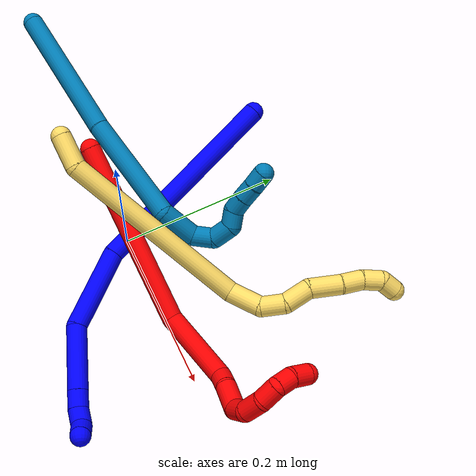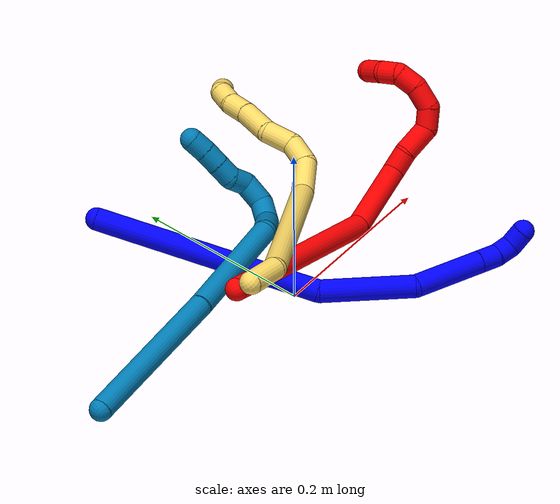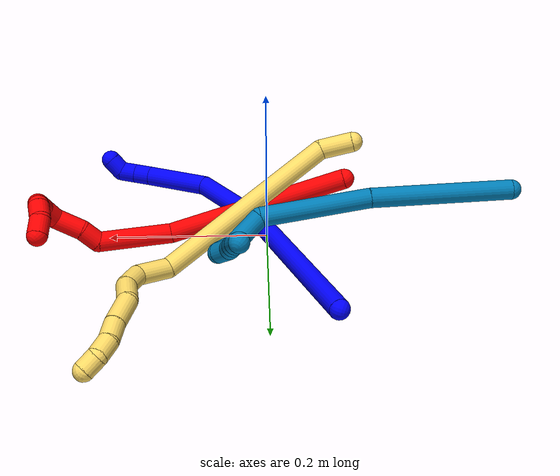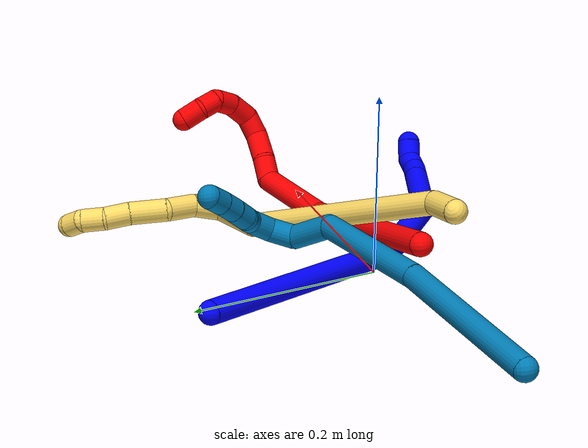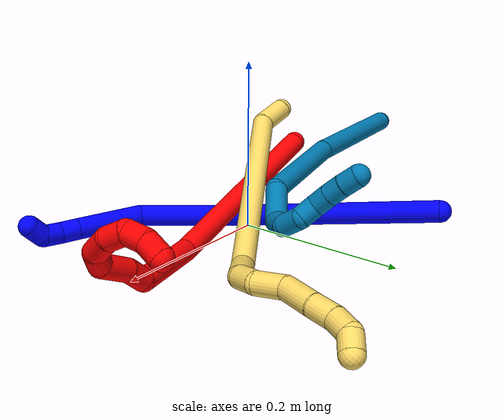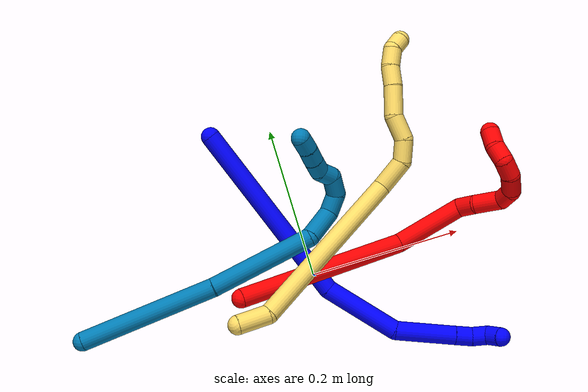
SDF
<sdf version="1.7">
 <world name="default">
  <model name="1">
   <static>0</static>
   <link name="1">
    <collision name="collision-cylinder-e_1_1_4">
     <pose>0.076953 -0.066994 0.075211 0.727679 0.652409 0.256225</pose>
     <geometry><cylinder><radius>0.0125</radius><length>0.25351</length></cylinder></geometry>
     <surface>
      <friction><ode><mu>1.16</mu><mu2>1.16</mu2><slip1>0</slip1><slip2>0</slip2></ode></friction>
      <contact><ode><kp>1e+06</kp><kd>1</kd><max_vel>0</max_vel><min_depth>0.001</min_depth></ode></contact>
     </surface>
    </collision>
    <visual name="visual-cylinder-e_1_1_4">
     <pose>0.076953 -0.066994 0.075211 0.727679 0.652409 0.256225</pose>
     <geometry><cylinder><radius>0.0125</radius><length>0.25351</length></cylinder></geometry>
     <material><ambient>0 0 1 1</ambient></material>
    </visual>
    <collision name="collision-cylinder-e_2_4_5">
     <pose>0.173534 -0.152003 0.194668 0.386645 0.389828 0.077259</pose>
     <geometry><cylinder><radius>0.0125</radius><length>0.103294</length></cylinder></geometry>
     <surface>
      <friction><ode><mu>1.16</mu><mu2>1.16</mu2><slip1>0</slip1><slip2>0</slip2></ode></friction>
      <contact><ode><kp>1e+06</kp><kd>1</kd><max_vel>0</max_vel><min_depth>0.001</min_depth></ode></contact>
     </surface>
    </collision>
    <visual name="visual-cylinder-e_2_4_5">
     <pose>0.173534 -0.152003 0.194668 0.386645 0.389828 0.077259</pose>
     <geometry><cylinder><radius>0.0125</radius><length>0.103294</length></cylinder></geometry>
     <material><ambient>0 0 1 1</ambient></material>
    </visual>
    <collision name="collision-cylinder-e_3_5_6">
     <pose>0.201872 -0.167133 0.277561 -0.074485 0.221108 -0.008272</pose>
     <geometry><cylinder><radius>0.0125</radius><length>0.079442</length></cylinder></geometry>
     <surface>
      <friction><ode><mu>1.16</mu><mu2>1.16</mu2><slip1>0</slip1><slip2>0</slip2></ode></friction>
      <contact><ode><kp>1e+06</kp><kd>1</kd><max_vel>0</max_vel><min_depth>0.001</min_depth></ode></contact>
     </surface>
    </collision>
    <visual name="visual-cylinder-e_3_5_6">
     <pose>0.201872 -0.167133 0.277561 -0.074485 0.221108 -0.008272</pose>
     <geometry><cylinder><radius>0.0125</radius><length>0.079442</length></cylinder></geometry>
     <material><ambient>0 0 1 1</ambient></material>
    </visual>
    <collision name="collision-cylinder-e_4_6_7">
     <pose>0.213014 -0.163363 0.326887 -0.082745 0.223052 -0.009272</pose>
     <geometry><cylinder><radius>0.0125</radius><length>0.021976</length></cylinder></geometry>
     <surface>
      <friction><ode><mu>1.16</mu><mu2>1.16</mu2><slip1>0</slip1><slip2>0</slip2></ode></friction>
      <contact><ode><kp>1e+06</kp><kd>1</kd><max_vel>0</max_vel><min_depth>0.001</min_depth></ode></contact>
     </surface>
    </collision>
    <visual name="visual-cylinder-e_4_6_7">
     <pose>0.213014 -0.163363 0.326887 -0.082745 0.223052 -0.009272</pose>
     <geometry><cylinder><radius>0.0125</radius><length>0.021976</length></cylinder></geometry>
     <material><ambient>0 0 1 1</ambient></material>
    </visual>
    <collision name="collision-cylinder-e_5_7_8">
     <pose>0.215849 -0.160691 0.347771 -0.173312 0.039024 -0.003391</pose>
     <geometry><cylinder><radius>0.0125</radius><length>0.020736</length></cylinder></geometry>
     <surface>
      <friction><ode><mu>1.16</mu><mu2>1.16</mu2><slip1>0</slip1><slip2>0</slip2></ode></friction>
      <contact><ode><kp>1e+06</kp><kd>1</kd><max_vel>0</max_vel><min_depth>0.001</min_depth></ode></contact>
     </surface>
    </collision>
    <visual name="visual-cylinder-e_5_7_8">
     <pose>0.215849 -0.160691 0.347771 -0.173312 0.039024 -0.003391</pose>
     <geometry><cylinder><radius>0.0125</radius><length>0.020736</length></cylinder></geometry>
     <material><ambient>0 0 1 1</ambient></material>
    </visual>
    <collision name="collision-cylinder-e_6_8_2">
     <pose>0.211552 -0.162159 0.366807 0.353047 -0.463353 -0.084115</pose>
     <geometry><cylinder><radius>0.0125</radius><length>0.021042</length></cylinder></geometry>
     <surface>
      <friction><ode><mu>1.16</mu><mu2>1.16</mu2><slip1>0</slip1><slip2>0</slip2></ode></friction>
      <contact><ode><kp>1e+06</kp><kd>1</kd><max_vel>0</max_vel><min_depth>0.001</min_depth></ode></contact>
     </surface>
    </collision>
    <visual name="visual-cylinder-e_6_8_2">
     <pose>0.211552 -0.162159 0.366807 0.353047 -0.463353 -0.084115</pose>
     <geometry><cylinder><radius>0.0125</radius><length>0.021042</length></cylinder></geometry>
     <material><ambient>0 0 1 1</ambient></material>
    </visual>
    <collision name="collision-sphere-2">
     <pose>0.206849 -0.165413 0.375638 0 -0 0</pose>
     <geometry><sphere><radius>0.0125</radius></sphere></geometry>
     <surface>
      <friction><ode><mu>1.16</mu><mu2>1.16</mu2><slip1>0</slip1><slip2>0</slip2></ode></friction>
      <contact><ode><kp>1e+06</kp><kd>1</kd><max_vel>0</max_vel><min_depth>0.001</min_depth></ode></contact>
     </surface>
    </collision>
    <visual name="visual-sphere-2">
     <pose>0.206849 -0.165413 0.375638 0 -0 0</pose>
     <geometry><sphere><radius>0.0125</radius></sphere></geometry>
     <material><ambient>0 0 1 1</ambient></material>
    </visual>
    <collision name="collision-sphere-4">
     <pose>0.153906 -0.133989 0.150423 0 -0 0</pose>
     <geometry><sphere><radius>0.0125</radius></sphere></geometry>
     <surface>
      <friction><ode><mu>1.16</mu><mu2>1.16</mu2><slip1>0</slip1><slip2>0</slip2></ode></friction>
      <contact><ode><kp>1e+06</kp><kd>1</kd><max_vel>0</max_vel><min_depth>0.001</min_depth></ode></contact>
     </surface>
    </collision>
    <visual name="visual-sphere-4">
     <pose>0.153906 -0.133989 0.150423 0 -0 0</pose>
     <geometry><sphere><radius>0.0125</radius></sphere></geometry>
     <material><ambient>0 0 1 1</ambient></material>
    </visual>
    <collision name="collision-sphere-1">
     <geometry><sphere><radius>0.0125</radius></sphere></geometry>
     <surface>
      <friction><ode><mu>1.16</mu><mu2>1.16</mu2><slip1>0</slip1><slip2>0</slip2></ode></friction>
      <contact><ode><kp>1e+06</kp><kd>1</kd><max_vel>0</max_vel><min_depth>0.001</min_depth></ode></contact>
     </surface>
    </collision>
    <visual name="visual-sphere-1">
     <geometry><sphere><radius>0.0125</radius></sphere></geometry>
     <material><ambient>0 0 1 1</ambient></material>
    </visual>
    <collision name="collision-sphere-8">
     <pose>0.216254 -0.158905 0.357975 0 -0 0</pose>
     <geometry><sphere><radius>0.0125</radius></sphere></geometry>
     <surface>
      <friction><ode><mu>1.16</mu><mu2>1.16</mu2><slip1>0</slip1><slip2>0</slip2></ode></friction>
      <contact><ode><kp>1e+06</kp><kd>1</kd><max_vel>0</max_vel><min_depth>0.001</min_depth></ode></contact>
     </surface>
    </collision>
    <visual name="visual-sphere-8">
     <pose>0.216254 -0.158905 0.357975 0 -0 0</pose>
     <geometry><sphere><radius>0.0125</radius></sphere></geometry>
     <material><ambient>0 0 1 1</ambient></material>
    </visual>
    <collision name="collision-sphere-5">
     <pose>0.193161 -0.170017 0.238914 0 -0 0</pose>
     <geometry><sphere><radius>0.0125</radius></sphere></geometry>
     <surface>
      <friction><ode><mu>1.16</mu><mu2>1.16</mu2><slip1>0</slip1><slip2>0</slip2></ode></friction>
      <contact><ode><kp>1e+06</kp><kd>1</kd><max_vel>0</max_vel><min_depth>0.001</min_depth></ode></contact>
     </surface>
    </collision>
    <visual name="visual-sphere-5">
     <pose>0.193161 -0.170017 0.238914 0 -0 0</pose>
     <geometry><sphere><radius>0.0125</radius></sphere></geometry>
     <material><ambient>0 0 1 1</ambient></material>
    </visual>
    <collision name="collision-sphere-6">
     <pose>0.210584 -0.164249 0.316207 0 -0 0</pose>
     <geometry><sphere><radius>0.0125</radius></sphere></geometry>
     <surface>
      <friction><ode><mu>1.16</mu><mu2>1.16</mu2><slip1>0</slip1><slip2>0</slip2></ode></friction>
      <contact><ode><kp>1e+06</kp><kd>1</kd><max_vel>0</max_vel><min_depth>0.001</min_depth></ode></contact>
     </surface>
    </collision>
    <visual name="visual-sphere-6">
     <pose>0.210584 -0.164249 0.316207 0 -0 0</pose>
     <geometry><sphere><radius>0.0125</radius></sphere></geometry>
     <material><ambient>0 0 1 1</ambient></material>
    </visual>
    <collision name="collision-sphere-7">
     <pose>0.215445 -0.162478 0.337566 0 -0 0</pose>
     <geometry><sphere><radius>0.0125</radius></sphere></geometry>
     <surface>
      <friction><ode><mu>1.16</mu><mu2>1.16</mu2><slip1>0</slip1><slip2>0</slip2></ode></friction>
      <contact><ode><kp>1e+06</kp><kd>1</kd><max_vel>0</max_vel><min_depth>0.001</min_depth></ode></contact>
     </surface>
    </collision>
    <visual name="visual-sphere-7">
     <pose>0.215445 -0.162478 0.337566 0 -0 0</pose>
     <geometry><sphere><radius>0.0125</radius></sphere></geometry>
     <material><ambient>0 0 1 1</ambient></material>
    </visual>
    <inertial>
     <pose>0.134158 -0.112593 0.166677 0 -0 0</pose>
     <mass>0.5</mass>
     <inertia>
      <ixx>0.001486</ixx>
      <ixy>0</ixy>
      <ixz>0</ixz>
      <iyy>0.001536</iyy>
      <iyz>0</iyz>
      <izz>-9.4e-05</izz>
     </inertia>
    </inertial>
   </link>
   <pose>-0.07611 0.211367 0.045623 -1.17382 1.01192 -1.56068</pose>
  </model>
  <model name="2">
   <static>0</static>
   <link name="2">
    <collision name="collision-cylinder-e_1_1_4">
     <pose>0.079398 -0.046987 -0.067601 2.53419 0.767291 1.8212</pose>
     <geometry><cylinder><radius>0.0125</radius><length>0.228752</length></cylinder></geometry>
     <surface>
      <friction><ode><mu>1.16</mu><mu2>1.16</mu2><slip1>0</slip1><slip2>0</slip2></ode></friction>
      <contact><ode><kp>1e+06</kp><kd>1</kd><max_vel>0</max_vel><min_depth>0.001</min_depth></ode></contact>
     </surface>
    </collision>
    <visual name="visual-cylinder-e_1_1_4">
     <pose>0.079398 -0.046987 -0.067601 2.53419 0.767291 1.8212</pose>
     <geometry><cylinder><radius>0.0125</radius><length>0.228752</length></cylinder></geometry>
     <material><ambient>1 0 0 1</ambient></material>
    </visual>
    <collision name="collision-cylinder-e_2_4_5">
     <pose>0.191431 -0.095195 -0.167931 3.10433 0.783607 3.05147</pose>
     <geometry><cylinder><radius>0.0125</radius><length>0.092468</length></cylinder></geometry>
     <surface>
      <friction><ode><mu>1.16</mu><mu2>1.16</mu2><slip1>0</slip1><slip2>0</slip2></ode></friction>
      <contact><ode><kp>1e+06</kp><kd>1</kd><max_vel>0</max_vel><min_depth>0.001</min_depth></ode></contact>
     </surface>
    </collision>
    <visual name="visual-cylinder-e_2_4_5">
     <pose>0.191431 -0.095195 -0.167931 3.10433 0.783607 3.05147</pose>
     <geometry><cylinder><radius>0.0125</radius><length>0.092468</length></cylinder></geometry>
     <material><ambient>1 0 0 1</ambient></material>
    </visual>
    <collision name="collision-cylinder-e_3_5_6">
     <pose>0.234693 -0.08995 -0.20332 -1.96134 0.989018 -1.35566</pose>
     <geometry><cylinder><radius>0.0125</radius><length>0.025442</length></cylinder></geometry>
     <surface>
      <friction><ode><mu>1.16</mu><mu2>1.16</mu2><slip1>0</slip1><slip2>0</slip2></ode></friction>
      <contact><ode><kp>1e+06</kp><kd>1</kd><max_vel>0</max_vel><min_depth>0.001</min_depth></ode></contact>
     </surface>
    </collision>
    <visual name="visual-cylinder-e_3_5_6">
     <pose>0.234693 -0.08995 -0.20332 -1.96134 0.989018 -1.35566</pose>
     <geometry><cylinder><radius>0.0125</radius><length>0.025442</length></cylinder></geometry>
     <material><ambient>1 0 0 1</ambient></material>
    </visual>
    <collision name="collision-cylinder-e_4_6_7">
     <pose>0.261578 -0.079057 -0.211367 -2.45329 1.16561 -2.14557</pose>
     <geometry><cylinder><radius>0.0125</radius><length>0.035378</length></cylinder></geometry>
     <surface>
      <friction><ode><mu>1.16</mu><mu2>1.16</mu2><slip1>0</slip1><slip2>0</slip2></ode></friction>
      <contact><ode><kp>1e+06</kp><kd>1</kd><max_vel>0</max_vel><min_depth>0.001</min_depth></ode></contact>
     </surface>
    </collision>
    <visual name="visual-cylinder-e_4_6_7">
     <pose>0.261578 -0.079057 -0.211367 -2.45329 1.16561 -2.14557</pose>
     <geometry><cylinder><radius>0.0125</radius><length>0.035378</length></cylinder></geometry>
     <material><ambient>1 0 0 1</ambient></material>
    </visual>
    <collision name="collision-cylinder-e_5_7_8">
     <pose>0.283726 -0.065082 -0.220939 -1.98417 0.514417 -0.765504</pose>
     <geometry><cylinder><radius>0.0125</radius><length>0.023946</length></cylinder></geometry>
     <surface>
      <friction><ode><mu>1.16</mu><mu2>1.16</mu2><slip1>0</slip1><slip2>0</slip2></ode></friction>
      <contact><ode><kp>1e+06</kp><kd>1</kd><max_vel>0</max_vel><min_depth>0.001</min_depth></ode></contact>
     </surface>
    </collision>
    <visual name="visual-cylinder-e_5_7_8">
     <pose>0.283726 -0.065082 -0.220939 -1.98417 0.514417 -0.765504</pose>
     <geometry><cylinder><radius>0.0125</radius><length>0.023946</length></cylinder></geometry>
     <material><ambient>1 0 0 1</ambient></material>
    </visual>
    <collision name="collision-cylinder-e_6_8_9">
     <pose>0.288033 -0.0441 -0.231753 -2.09594 -0.119243 0.206412</pose>
     <geometry><cylinder><radius>0.0125</radius><length>0.026625</length></cylinder></geometry>
     <surface>
      <friction><ode><mu>1.16</mu><mu2>1.16</mu2><slip1>0</slip1><slip2>0</slip2></ode></friction>
      <contact><ode><kp>1e+06</kp><kd>1</kd><max_vel>0</max_vel><min_depth>0.001</min_depth></ode></contact>
     </surface>
    </collision>
    <visual name="visual-cylinder-e_6_8_9">
     <pose>0.288033 -0.0441 -0.231753 -2.09594 -0.119243 0.206412</pose>
     <geometry><cylinder><radius>0.0125</radius><length>0.026625</length></cylinder></geometry>
     <material><ambient>1 0 0 1</ambient></material>
    </visual>
    <collision name="collision-cylinder-e_7_9_10">
     <pose>0.280923 -0.024314 -0.244627 -2.21319 -0.487305 0.921685</pose>
     <geometry><cylinder><radius>0.0125</radius><length>0.023604</length></cylinder></geometry>
     <surface>
      <friction><ode><mu>1.16</mu><mu2>1.16</mu2><slip1>0</slip1><slip2>0</slip2></ode></friction>
      <contact><ode><kp>1e+06</kp><kd>1</kd><max_vel>0</max_vel><min_depth>0.001</min_depth></ode></contact>
     </surface>
    </collision>
    <visual name="visual-cylinder-e_7_9_10">
     <pose>0.280923 -0.024314 -0.244627 -2.21319 -0.487305 0.921685</pose>
     <geometry><cylinder><radius>0.0125</radius><length>0.023604</length></cylinder></geometry>
     <material><ambient>1 0 0 1</ambient></material>
    </visual>
    <collision name="collision-cylinder-e_8_10_11">
     <pose>0.268152 -0.015262 -0.258447 -3.04916 -0.761187 2.91143</pose>
     <geometry><cylinder><radius>0.0125</radius><length>0.021005</length></cylinder></geometry>
     <surface>
      <friction><ode><mu>1.16</mu><mu2>1.16</mu2><slip1>0</slip1><slip2>0</slip2></ode></friction>
      <contact><ode><kp>1e+06</kp><kd>1</kd><max_vel>0</max_vel><min_depth>0.001</min_depth></ode></contact>
     </surface>
    </collision>
    <visual name="visual-cylinder-e_8_10_11">
     <pose>0.268152 -0.015262 -0.258447 -3.04916 -0.761187 2.91143</pose>
     <geometry><cylinder><radius>0.0125</radius><length>0.021005</length></cylinder></geometry>
     <material><ambient>1 0 0 1</ambient></material>
    </visual>
    <collision name="collision-cylinder-e_9_11_2">
     <pose>0.255418 -0.016833 -0.275735 2.91185 -0.502929 -2.29734</pose>
     <geometry><cylinder><radius>0.0125</radius><length>0.022779</length></cylinder></geometry>
     <surface>
      <friction><ode><mu>1.16</mu><mu2>1.16</mu2><slip1>0</slip1><slip2>0</slip2></ode></friction>
      <contact><ode><kp>1e+06</kp><kd>1</kd><max_vel>0</max_vel><min_depth>0.001</min_depth></ode></contact>
     </surface>
    </collision>
    <visual name="visual-cylinder-e_9_11_2">
     <pose>0.255418 -0.016833 -0.275735 2.91185 -0.502929 -2.29734</pose>
     <geometry><cylinder><radius>0.0125</radius><length>0.022779</length></cylinder></geometry>
     <material><ambient>1 0 0 1</ambient></material>
    </visual>
    <collision name="collision-sphere-2">
     <pose>0.249928 -0.019106 -0.285452 0 -0 0</pose>
     <geometry><sphere><radius>0.0125</radius></sphere></geometry>
     <surface>
      <friction><ode><mu>1.16</mu><mu2>1.16</mu2><slip1>0</slip1><slip2>0</slip2></ode></friction>
      <contact><ode><kp>1e+06</kp><kd>1</kd><max_vel>0</max_vel><min_depth>0.001</min_depth></ode></contact>
     </surface>
    </collision>
    <visual name="visual-sphere-2">
     <pose>0.249928 -0.019106 -0.285452 0 -0 0</pose>
     <geometry><sphere><radius>0.0125</radius></sphere></geometry>
     <material><ambient>1 0 0 1</ambient></material>
    </visual>
    <collision name="collision-sphere-11">
     <pose>0.260908 -0.01456 -0.266018 0 -0 0</pose>
     <geometry><sphere><radius>0.0125</radius></sphere></geometry>
     <surface>
      <friction><ode><mu>1.16</mu><mu2>1.16</mu2><slip1>0</slip1><slip2>0</slip2></ode></friction>
      <contact><ode><kp>1e+06</kp><kd>1</kd><max_vel>0</max_vel><min_depth>0.001</min_depth></ode></contact>
     </surface>
    </collision>
    <visual name="visual-sphere-11">
     <pose>0.260908 -0.01456 -0.266018 0 -0 0</pose>
     <geometry><sphere><radius>0.0125</radius></sphere></geometry>
     <material><ambient>1 0 0 1</ambient></material>
    </visual>
    <collision name="collision-sphere-10">
     <pose>0.275397 -0.015964 -0.250875 0 -0 0</pose>
     <geometry><sphere><radius>0.0125</radius></sphere></geometry>
     <surface>
      <friction><ode><mu>1.16</mu><mu2>1.16</mu2><slip1>0</slip1><slip2>0</slip2></ode></friction>
      <contact><ode><kp>1e+06</kp><kd>1</kd><max_vel>0</max_vel><min_depth>0.001</min_depth></ode></contact>
     </surface>
    </collision>
    <visual name="visual-sphere-10">
     <pose>0.275397 -0.015964 -0.250875 0 -0 0</pose>
     <geometry><sphere><radius>0.0125</radius></sphere></geometry>
     <material><ambient>1 0 0 1</ambient></material>
    </visual>
    <collision name="collision-sphere-9">
     <pose>0.286449 -0.032663 -0.23838 0 -0 0</pose>
     <geometry><sphere><radius>0.0125</radius></sphere></geometry>
     <surface>
      <friction><ode><mu>1.16</mu><mu2>1.16</mu2><slip1>0</slip1><slip2>0</slip2></ode></friction>
      <contact><ode><kp>1e+06</kp><kd>1</kd><max_vel>0</max_vel><min_depth>0.001</min_depth></ode></contact>
     </surface>
    </collision>
    <visual name="visual-sphere-9">
     <pose>0.286449 -0.032663 -0.23838 0 -0 0</pose>
     <geometry><sphere><radius>0.0125</radius></sphere></geometry>
     <material><ambient>1 0 0 1</ambient></material>
    </visual>
    <collision name="collision-sphere-4">
     <pose>0.158797 -0.093975 -0.135203 0 -0 0</pose>
     <geometry><sphere><radius>0.0125</radius></sphere></geometry>
     <surface>
      <friction><ode><mu>1.16</mu><mu2>1.16</mu2><slip1>0</slip1><slip2>0</slip2></ode></friction>
      <contact><ode><kp>1e+06</kp><kd>1</kd><max_vel>0</max_vel><min_depth>0.001</min_depth></ode></contact>
     </surface>
    </collision>
    <visual name="visual-sphere-4">
     <pose>0.158797 -0.093975 -0.135203 0 -0 0</pose>
     <geometry><sphere><radius>0.0125</radius></sphere></geometry>
     <material><ambient>1 0 0 1</ambient></material>
    </visual>
    <collision name="collision-sphere-1">
     <geometry><sphere><radius>0.0125</radius></sphere></geometry>
     <surface>
      <friction><ode><mu>1.16</mu><mu2>1.16</mu2><slip1>0</slip1><slip2>0</slip2></ode></friction>
      <contact><ode><kp>1e+06</kp><kd>1</kd><max_vel>0</max_vel><min_depth>0.001</min_depth></ode></contact>
     </surface>
    </collision>
    <visual name="visual-sphere-1">
     <geometry><sphere><radius>0.0125</radius></sphere></geometry>
     <material><ambient>1 0 0 1</ambient></material>
    </visual>
    <collision name="collision-sphere-8">
     <pose>0.289617 -0.055537 -0.225126 0 -0 0</pose>
     <geometry><sphere><radius>0.0125</radius></sphere></geometry>
     <surface>
      <friction><ode><mu>1.16</mu><mu2>1.16</mu2><slip1>0</slip1><slip2>0</slip2></ode></friction>
      <contact><ode><kp>1e+06</kp><kd>1</kd><max_vel>0</max_vel><min_depth>0.001</min_depth></ode></contact>
     </surface>
    </collision>
    <visual name="visual-sphere-8">
     <pose>0.289617 -0.055537 -0.225126 0 -0 0</pose>
     <geometry><sphere><radius>0.0125</radius></sphere></geometry>
     <material><ambient>1 0 0 1</ambient></material>
    </visual>
    <collision name="collision-sphere-5">
     <pose>0.224065 -0.096415 -0.200659 0 -0 0</pose>
     <geometry><sphere><radius>0.0125</radius></sphere></geometry>
     <surface>
      <friction><ode><mu>1.16</mu><mu2>1.16</mu2><slip1>0</slip1><slip2>0</slip2></ode></friction>
      <contact><ode><kp>1e+06</kp><kd>1</kd><max_vel>0</max_vel><min_depth>0.001</min_depth></ode></contact>
     </surface>
    </collision>
    <visual name="visual-sphere-5">
     <pose>0.224065 -0.096415 -0.200659 0 -0 0</pose>
     <geometry><sphere><radius>0.0125</radius></sphere></geometry>
     <material><ambient>1 0 0 1</ambient></material>
    </visual>
    <collision name="collision-sphere-6">
     <pose>0.245322 -0.083486 -0.205982 0 -0 0</pose>
     <geometry><sphere><radius>0.0125</radius></sphere></geometry>
     <surface>
      <friction><ode><mu>1.16</mu><mu2>1.16</mu2><slip1>0</slip1><slip2>0</slip2></ode></friction>
      <contact><ode><kp>1e+06</kp><kd>1</kd><max_vel>0</max_vel><min_depth>0.001</min_depth></ode></contact>
     </surface>
    </collision>
    <visual name="visual-sphere-6">
     <pose>0.245322 -0.083486 -0.205982 0 -0 0</pose>
     <geometry><sphere><radius>0.0125</radius></sphere></geometry>
     <material><ambient>1 0 0 1</ambient></material>
    </visual>
    <collision name="collision-sphere-7">
     <pose>0.277835 -0.074628 -0.216752 0 -0 0</pose>
     <geometry><sphere><radius>0.0125</radius></sphere></geometry>
     <surface>
      <friction><ode><mu>1.16</mu><mu2>1.16</mu2><slip1>0</slip1><slip2>0</slip2></ode></friction>
      <contact><ode><kp>1e+06</kp><kd>1</kd><max_vel>0</max_vel><min_depth>0.001</min_depth></ode></contact>
     </surface>
    </collision>
    <visual name="visual-sphere-7">
     <pose>0.277835 -0.074628 -0.216752 0 -0 0</pose>
     <geometry><sphere><radius>0.0125</radius></sphere></geometry>
     <material><ambient>1 0 0 1</ambient></material>
    </visual>
    <inertial>
     <pose>0.167267 -0.057294 -0.145176 0 -0 0</pose>
     <mass>0.5</mass>
     <inertia>
      <ixx>0.000496</ixx>
      <ixy>0</ixy>
      <ixz>0</ixz>
      <iyy>0.00137</iyy>
      <iyz>0</iyz>
      <izz>-0.000367</izz>
     </inertia>
    </inertial>
   </link>
   <pose>-0.096255 -0.000779 0.083128 1.39017 -0.26187 -0.526142</pose>
  </model>
  <model name="5">
   <static>0</static>
   <link name="5">
    <collision name="collision-cylinder-e_1_1_4">
     <pose>0.017145 0.004521 -0.01046 -2.73367 0.984189 -2.40512</pose>
     <geometry><cylinder><radius>0.0125</radius><length>0.041172</length></cylinder></geometry>
     <surface>
      <friction><ode><mu>1.16</mu><mu2>1.16</mu2><slip1>0</slip1><slip2>0</slip2></ode></friction>
      <contact><ode><kp>1e+06</kp><kd>1</kd><max_vel>0</max_vel><min_depth>0.001</min_depth></ode></contact>
     </surface>
    </collision>
    <visual name="visual-cylinder-e_1_1_4">
     <pose>0.017145 0.004521 -0.01046 -2.73367 0.984189 -2.40512</pose>
     <geometry><cylinder><radius>0.0125</radius><length>0.041172</length></cylinder></geometry>
     <material><ambient>1 0.858824 0.4 1</ambient></material>
    </visual>
    <collision name="collision-cylinder-e_2_4_5">
     <pose>0.114745 0.089463 -0.05937 -2.01677 0.734235 -1.09562</pose>
     <geometry><cylinder><radius>0.0125</radius><length>0.240159</length></cylinder></geometry>
     <surface>
      <friction><ode><mu>1.16</mu><mu2>1.16</mu2><slip1>0</slip1><slip2>0</slip2></ode></friction>
      <contact><ode><kp>1e+06</kp><kd>1</kd><max_vel>0</max_vel><min_depth>0.001</min_depth></ode></contact>
     </surface>
    </collision>
    <visual name="visual-cylinder-e_2_4_5">
     <pose>0.114745 0.089463 -0.05937 -2.01677 0.734235 -1.09562</pose>
     <geometry><cylinder><radius>0.0125</radius><length>0.240159</length></cylinder></geometry>
     <material><ambient>1 0.858824 0.4 1</ambient></material>
    </visual>
    <collision name="collision-cylinder-e_3_5_6">
     <pose>0.214497 0.178833 -0.094843 -1.24967 1.1162 -0.846153</pose>
     <geometry><cylinder><radius>0.0125</radius><length>0.042956</length></cylinder></geometry>
     <surface>
      <friction><ode><mu>1.16</mu><mu2>1.16</mu2><slip1>0</slip1><slip2>0</slip2></ode></friction>
      <contact><ode><kp>1e+06</kp><kd>1</kd><max_vel>0</max_vel><min_depth>0.001</min_depth></ode></contact>
     </surface>
    </collision>
    <visual name="visual-cylinder-e_3_5_6">
     <pose>0.214497 0.178833 -0.094843 -1.24967 1.1162 -0.846153</pose>
     <geometry><cylinder><radius>0.0125</radius><length>0.042956</length></cylinder></geometry>
     <material><ambient>1 0.858824 0.4 1</ambient></material>
    </visual>
    <collision name="collision-cylinder-e_4_6_7">
     <pose>0.241565 0.198066 -0.084257 -0.933846 0.545874 -0.280368</pose>
     <geometry><cylinder><radius>0.0125</radius><length>0.029937</length></cylinder></geometry>
     <surface>
      <friction><ode><mu>1.16</mu><mu2>1.16</mu2><slip1>0</slip1><slip2>0</slip2></ode></friction>
      <contact><ode><kp>1e+06</kp><kd>1</kd><max_vel>0</max_vel><min_depth>0.001</min_depth></ode></contact>
     </surface>
    </collision>
    <visual name="visual-cylinder-e_4_6_7">
     <pose>0.241565 0.198066 -0.084257 -0.933846 0.545874 -0.280368</pose>
     <geometry><cylinder><radius>0.0125</radius><length>0.029937</length></cylinder></geometry>
     <material><ambient>1 0.858824 0.4 1</ambient></material>
    </visual>
    <collision name="collision-cylinder-e_5_7_8">
     <pose>0.250276 0.220892 -0.065699 -0.853017 0.056374 -0.025622</pose>
     <geometry><cylinder><radius>0.0125</radius><length>0.033349</length></cylinder></geometry>
     <surface>
      <friction><ode><mu>1.16</mu><mu2>1.16</mu2><slip1>0</slip1><slip2>0</slip2></ode></friction>
      <contact><ode><kp>1e+06</kp><kd>1</kd><max_vel>0</max_vel><min_depth>0.001</min_depth></ode></contact>
     </surface>
    </collision>
    <visual name="visual-cylinder-e_5_7_8">
     <pose>0.250276 0.220892 -0.065699 -0.853017 0.056374 -0.025622</pose>
     <geometry><cylinder><radius>0.0125</radius><length>0.033349</length></cylinder></geometry>
     <material><ambient>1 0.858824 0.4 1</ambient></material>
    </visual>
    <collision name="collision-cylinder-e_6_8_9">
     <pose>0.258917 0.250266 -0.047018 -1.14029 0.39404 -0.254584</pose>
     <geometry><cylinder><radius>0.0125</radius><length>0.040124</length></cylinder></geometry>
     <surface>
      <friction><ode><mu>1.16</mu><mu2>1.16</mu2><slip1>0</slip1><slip2>0</slip2></ode></friction>
      <contact><ode><kp>1e+06</kp><kd>1</kd><max_vel>0</max_vel><min_depth>0.001</min_depth></ode></contact>
     </surface>
    </collision>
    <visual name="visual-cylinder-e_6_8_9">
     <pose>0.258917 0.250266 -0.047018 -1.14029 0.39404 -0.254584</pose>
     <geometry><cylinder><radius>0.0125</radius><length>0.040124</length></cylinder></geometry>
     <material><ambient>1 0.858824 0.4 1</ambient></material>
    </visual>
    <collision name="collision-cylinder-e_7_9_10">
     <pose>0.270128 0.278996 -0.034035 -1.155 0.263514 -0.172279</pose>
     <geometry><cylinder><radius>0.0125</radius><length>0.026935</length></cylinder></geometry>
     <surface>
      <friction><ode><mu>1.16</mu><mu2>1.16</mu2><slip1>0</slip1><slip2>0</slip2></ode></friction>
      <contact><ode><kp>1e+06</kp><kd>1</kd><max_vel>0</max_vel><min_depth>0.001</min_depth></ode></contact>
     </surface>
    </collision>
    <visual name="visual-cylinder-e_7_9_10">
     <pose>0.270128 0.278996 -0.034035 -1.155 0.263514 -0.172279</pose>
     <geometry><cylinder><radius>0.0125</radius><length>0.026935</length></cylinder></geometry>
     <material><ambient>1 0.858824 0.4 1</ambient></material>
    </visual>
    <collision name="collision-cylinder-e_8_10_11">
     <pose>0.279605 0.301304 -0.025831 -1.29449 0.504015 -0.384439</pose>
     <geometry><cylinder><radius>0.0125</radius><length>0.024723</length></cylinder></geometry>
     <surface>
      <friction><ode><mu>1.16</mu><mu2>1.16</mu2><slip1>0</slip1><slip2>0</slip2></ode></friction>
      <contact><ode><kp>1e+06</kp><kd>1</kd><max_vel>0</max_vel><min_depth>0.001</min_depth></ode></contact>
     </surface>
    </collision>
    <visual name="visual-cylinder-e_8_10_11">
     <pose>0.279605 0.301304 -0.025831 -1.29449 0.504015 -0.384439</pose>
     <geometry><cylinder><radius>0.0125</radius><length>0.024723</length></cylinder></geometry>
     <material><ambient>1 0.858824 0.4 1</ambient></material>
    </visual>
    <collision name="collision-cylinder-e_9_11_2">
     <pose>0.291271 0.319508 -0.026542 -2.01051 0.584468 -0.885267</pose>
     <geometry><cylinder><radius>0.0125</radius><length>0.020644</length></cylinder></geometry>
     <surface>
      <friction><ode><mu>1.16</mu><mu2>1.16</mu2><slip1>0</slip1><slip2>0</slip2></ode></friction>
      <contact><ode><kp>1e+06</kp><kd>1</kd><max_vel>0</max_vel><min_depth>0.001</min_depth></ode></contact>
     </surface>
    </collision>
    <visual name="visual-cylinder-e_9_11_2">
     <pose>0.291271 0.319508 -0.026542 -2.01051 0.584468 -0.885267</pose>
     <geometry><cylinder><radius>0.0125</radius><length>0.020644</length></cylinder></geometry>
     <material><ambient>1 0.858824 0.4 1</ambient></material>
    </visual>
    <collision name="collision-sphere-2">
     <pose>0.296966 0.327297 -0.030207 0 -0 0</pose>
     <geometry><sphere><radius>0.0125</radius></sphere></geometry>
     <surface>
      <friction><ode><mu>1.16</mu><mu2>1.16</mu2><slip1>0</slip1><slip2>0</slip2></ode></friction>
      <contact><ode><kp>1e+06</kp><kd>1</kd><max_vel>0</max_vel><min_depth>0.001</min_depth></ode></contact>
     </surface>
    </collision>
    <visual name="visual-sphere-2">
     <pose>0.296966 0.327297 -0.030207 0 -0 0</pose>
     <geometry><sphere><radius>0.0125</radius></sphere></geometry>
     <material><ambient>1 0.858824 0.4 1</ambient></material>
    </visual>
    <collision name="collision-sphere-11">
     <pose>0.285575 0.311718 -0.022878 0 -0 0</pose>
     <geometry><sphere><radius>0.0125</radius></sphere></geometry>
     <surface>
      <friction><ode><mu>1.16</mu><mu2>1.16</mu2><slip1>0</slip1><slip2>0</slip2></ode></friction>
      <contact><ode><kp>1e+06</kp><kd>1</kd><max_vel>0</max_vel><min_depth>0.001</min_depth></ode></contact>
     </surface>
    </collision>
    <visual name="visual-sphere-11">
     <pose>0.285575 0.311718 -0.022878 0 -0 0</pose>
     <geometry><sphere><radius>0.0125</radius></sphere></geometry>
     <material><ambient>1 0.858824 0.4 1</ambient></material>
    </visual>
    <collision name="collision-sphere-10">
     <pose>0.273636 0.290891 -0.028783 0 -0 0</pose>
     <geometry><sphere><radius>0.0125</radius></sphere></geometry>
     <surface>
      <friction><ode><mu>1.16</mu><mu2>1.16</mu2><slip1>0</slip1><slip2>0</slip2></ode></friction>
      <contact><ode><kp>1e+06</kp><kd>1</kd><max_vel>0</max_vel><min_depth>0.001</min_depth></ode></contact>
     </surface>
    </collision>
    <visual name="visual-sphere-10">
     <pose>0.273636 0.290891 -0.028783 0 -0 0</pose>
     <geometry><sphere><radius>0.0125</radius></sphere></geometry>
     <material><ambient>1 0.858824 0.4 1</ambient></material>
    </visual>
    <collision name="collision-sphere-9">
     <pose>0.26662 0.267101 -0.039287 0 -0 0</pose>
     <geometry><sphere><radius>0.0125</radius></sphere></geometry>
     <surface>
      <friction><ode><mu>1.16</mu><mu2>1.16</mu2><slip1>0</slip1><slip2>0</slip2></ode></friction>
      <contact><ode><kp>1e+06</kp><kd>1</kd><max_vel>0</max_vel><min_depth>0.001</min_depth></ode></contact>
     </surface>
    </collision>
    <visual name="visual-sphere-9">
     <pose>0.26662 0.267101 -0.039287 0 -0 0</pose>
     <geometry><sphere><radius>0.0125</radius></sphere></geometry>
     <material><ambient>1 0.858824 0.4 1</ambient></material>
    </visual>
    <collision name="collision-sphere-4">
     <pose>0.034289 0.009041 -0.020921 0 -0 0</pose>
     <geometry><sphere><radius>0.0125</radius></sphere></geometry>
     <surface>
      <friction><ode><mu>1.16</mu><mu2>1.16</mu2><slip1>0</slip1><slip2>0</slip2></ode></friction>
      <contact><ode><kp>1e+06</kp><kd>1</kd><max_vel>0</max_vel><min_depth>0.001</min_depth></ode></contact>
     </surface>
    </collision>
    <visual name="visual-sphere-4">
     <pose>0.034289 0.009041 -0.020921 0 -0 0</pose>
     <geometry><sphere><radius>0.0125</radius></sphere></geometry>
     <material><ambient>1 0.858824 0.4 1</ambient></material>
    </visual>
    <collision name="collision-sphere-1">
     <geometry><sphere><radius>0.0125</radius></sphere></geometry>
     <surface>
      <friction><ode><mu>1.16</mu><mu2>1.16</mu2><slip1>0</slip1><slip2>0</slip2></ode></friction>
      <contact><ode><kp>1e+06</kp><kd>1</kd><max_vel>0</max_vel><min_depth>0.001</min_depth></ode></contact>
     </surface>
    </collision>
    <visual name="visual-sphere-1">
     <geometry><sphere><radius>0.0125</radius></sphere></geometry>
     <material><ambient>1 0.858824 0.4 1</ambient></material>
    </visual>
    <collision name="collision-sphere-8">
     <pose>0.251215 0.233432 -0.054749 0 -0 0</pose>
     <geometry><sphere><radius>0.0125</radius></sphere></geometry>
     <surface>
      <friction><ode><mu>1.16</mu><mu2>1.16</mu2><slip1>0</slip1><slip2>0</slip2></ode></friction>
      <contact><ode><kp>1e+06</kp><kd>1</kd><max_vel>0</max_vel><min_depth>0.001</min_depth></ode></contact>
     </surface>
    </collision>
    <visual name="visual-sphere-8">
     <pose>0.251215 0.233432 -0.054749 0 -0 0</pose>
     <geometry><sphere><radius>0.0125</radius></sphere></geometry>
     <material><ambient>1 0.858824 0.4 1</ambient></material>
    </visual>
    <collision name="collision-sphere-5">
     <pose>0.195201 0.169884 -0.09782 0 -0 0</pose>
     <geometry><sphere><radius>0.0125</radius></sphere></geometry>
     <surface>
      <friction><ode><mu>1.16</mu><mu2>1.16</mu2><slip1>0</slip1><slip2>0</slip2></ode></friction>
      <contact><ode><kp>1e+06</kp><kd>1</kd><max_vel>0</max_vel><min_depth>0.001</min_depth></ode></contact>
     </surface>
    </collision>
    <visual name="visual-sphere-5">
     <pose>0.195201 0.169884 -0.09782 0 -0 0</pose>
     <geometry><sphere><radius>0.0125</radius></sphere></geometry>
     <material><ambient>1 0.858824 0.4 1</ambient></material>
    </visual>
    <collision name="collision-sphere-6">
     <pose>0.233794 0.187782 -0.091866 0 -0 0</pose>
     <geometry><sphere><radius>0.0125</radius></sphere></geometry>
     <surface>
      <friction><ode><mu>1.16</mu><mu2>1.16</mu2><slip1>0</slip1><slip2>0</slip2></ode></friction>
      <contact><ode><kp>1e+06</kp><kd>1</kd><max_vel>0</max_vel><min_depth>0.001</min_depth></ode></contact>
     </surface>
    </collision>
    <visual name="visual-sphere-6">
     <pose>0.233794 0.187782 -0.091866 0 -0 0</pose>
     <geometry><sphere><radius>0.0125</radius></sphere></geometry>
     <material><ambient>1 0.858824 0.4 1</ambient></material>
    </visual>
    <collision name="collision-sphere-7">
     <pose>0.249336 0.208351 -0.076649 0 -0 0</pose>
     <geometry><sphere><radius>0.0125</radius></sphere></geometry>
     <surface>
      <friction><ode><mu>1.16</mu><mu2>1.16</mu2><slip1>0</slip1><slip2>0</slip2></ode></friction>
      <contact><ode><kp>1e+06</kp><kd>1</kd><max_vel>0</max_vel><min_depth>0.001</min_depth></ode></contact>
     </surface>
    </collision>
    <visual name="visual-sphere-7">
     <pose>0.249336 0.208351 -0.076649 0 -0 0</pose>
     <geometry><sphere><radius>0.0125</radius></sphere></geometry>
     <material><ambient>1 0.858824 0.4 1</ambient></material>
    </visual>
    <inertial>
     <pose>0.167291 0.148502 -0.054933 0 -0 0</pose>
     <mass>0.5</mass>
     <inertia>
      <ixx>-0.000342</ixx>
      <ixy>0</ixy>
      <ixz>0</ixz>
      <iyy>-0.000332</iyy>
      <iyz>0</iyz>
      <izz>-0.001604</izz>
     </inertia>
    </inertial>
   </link>
   <pose>-0.107944 -0.030232 0.118882 -0.628405 -0.334343 0.150752</pose>
  </model>
  <model name="9">
   <static>0</static>
   <link name="9">
    <collision name="collision-cylinder-e_1_1_4">
     <pose>0.058277 0.052003 0.044034 -0.868187 0.707521 -0.339113</pose>
     <geometry><cylinder><radius>0.0125</radius><length>0.179328</length></cylinder></geometry>
     <surface>
      <friction><ode><mu>1.16</mu><mu2>1.16</mu2><slip1>0</slip1><slip2>0</slip2></ode></friction>
      <contact><ode><kp>1e+06</kp><kd>1</kd><max_vel>0</max_vel><min_depth>0.001</min_depth></ode></contact>
     </surface>
    </collision>
    <visual name="visual-cylinder-e_1_1_4">
     <pose>0.058277 0.052003 0.044034 -0.868187 0.707521 -0.339113</pose>
     <geometry><cylinder><radius>0.0125</radius><length>0.179328</length></cylinder></geometry>
     <material><ambient>0 0.490196 0.709804 1</ambient></material>
    </visual>
    <collision name="collision-cylinder-e_2_4_5">
     <pose>0.156183 0.144722 0.127961 -0.795604 0.607515 -0.261925</pose>
     <geometry><cylinder><radius>0.0125</radius><length>0.138847</length></cylinder></geometry>
     <surface>
      <friction><ode><mu>1.16</mu><mu2>1.16</mu2><slip1>0</slip1><slip2>0</slip2></ode></friction>
      <contact><ode><kp>1e+06</kp><kd>1</kd><max_vel>0</max_vel><min_depth>0.001</min_depth></ode></contact>
     </surface>
    </collision>
    <visual name="visual-cylinder-e_2_4_5">
     <pose>0.156183 0.144722 0.127961 -0.795604 0.607515 -0.261925</pose>
     <geometry><cylinder><radius>0.0125</radius><length>0.138847</length></cylinder></geometry>
     <material><ambient>0 0.490196 0.709804 1</ambient></material>
    </visual>
    <collision name="collision-cylinder-e_3_5_6">
     <pose>0.195837 0.19934 0.187091 -0.625795 0.001048 -0.000339</pose>
     <geometry><cylinder><radius>0.0125</radius><length>0.047469</length></cylinder></geometry>
     <surface>
      <friction><ode><mu>1.16</mu><mu2>1.16</mu2><slip1>0</slip1><slip2>0</slip2></ode></friction>
      <contact><ode><kp>1e+06</kp><kd>1</kd><max_vel>0</max_vel><min_depth>0.001</min_depth></ode></contact>
     </surface>
    </collision>
    <visual name="visual-cylinder-e_3_5_6">
     <pose>0.195837 0.19934 0.187091 -0.625795 0.001048 -0.000339</pose>
     <geometry><cylinder><radius>0.0125</radius><length>0.047469</length></cylinder></geometry>
     <material><ambient>0 0.490196 0.709804 1</ambient></material>
    </visual>
    <collision name="collision-cylinder-e_4_6_7">
     <pose>0.201168 0.212469 0.218639 0.06271 0.406203 0.012919</pose>
     <geometry><cylinder><radius>0.0125</radius><length>0.026856</length></cylinder></geometry>
     <surface>
      <friction><ode><mu>1.16</mu><mu2>1.16</mu2><slip1>0</slip1><slip2>0</slip2></ode></friction>
      <contact><ode><kp>1e+06</kp><kd>1</kd><max_vel>0</max_vel><min_depth>0.001</min_depth></ode></contact>
     </surface>
    </collision>
    <visual name="visual-cylinder-e_4_6_7">
     <pose>0.201168 0.212469 0.218639 0.06271 0.406203 0.012919</pose>
     <geometry><cylinder><radius>0.0125</radius><length>0.026856</length></cylinder></geometry>
     <material><ambient>0 0.490196 0.709804 1</ambient></material>
    </visual>
    <collision name="collision-cylinder-e_5_7_8">
     <pose>0.209838 0.202512 0.240017 0.791837 0.255037 0.107082</pose>
     <geometry><cylinder><radius>0.0125</radius><length>0.026675</length></cylinder></geometry>
     <surface>
      <friction><ode><mu>1.16</mu><mu2>1.16</mu2><slip1>0</slip1><slip2>0</slip2></ode></friction>
      <contact><ode><kp>1e+06</kp><kd>1</kd><max_vel>0</max_vel><min_depth>0.001</min_depth></ode></contact>
     </surface>
    </collision>
    <visual name="visual-cylinder-e_5_7_8">
     <pose>0.209838 0.202512 0.240017 0.791837 0.255037 0.107082</pose>
     <geometry><cylinder><radius>0.0125</radius><length>0.026675</length></cylinder></geometry>
     <material><ambient>0 0.490196 0.709804 1</ambient></material>
    </visual>
    <collision name="collision-cylinder-e_6_8_9">
     <pose>0.212303 0.183117 0.249944 1.48673 -0.087587 -0.080525</pose>
     <geometry><cylinder><radius>0.0125</radius><length>0.020573</length></cylinder></geometry>
     <surface>
      <friction><ode><mu>1.16</mu><mu2>1.16</mu2><slip1>0</slip1><slip2>0</slip2></ode></friction>
      <contact><ode><kp>1e+06</kp><kd>1</kd><max_vel>0</max_vel><min_depth>0.001</min_depth></ode></contact>
     </surface>
    </collision>
    <visual name="visual-cylinder-e_6_8_9">
     <pose>0.212303 0.183117 0.249944 1.48673 -0.087587 -0.080525</pose>
     <geometry><cylinder><radius>0.0125</radius><length>0.020573</length></cylinder></geometry>
     <material><ambient>0 0.490196 0.709804 1</ambient></material>
    </visual>
    <collision name="collision-cylinder-e_7_9_10">
     <pose>0.213917 0.164204 0.255279 1.09581 0.251471 0.153963</pose>
     <geometry><cylinder><radius>0.0125</radius><length>0.020205</length></cylinder></geometry>
     <surface>
      <friction><ode><mu>1.16</mu><mu2>1.16</mu2><slip1>0</slip1><slip2>0</slip2></ode></friction>
      <contact><ode><kp>1e+06</kp><kd>1</kd><max_vel>0</max_vel><min_depth>0.001</min_depth></ode></contact>
     </surface>
    </collision>
    <visual name="visual-cylinder-e_7_9_10">
     <pose>0.213917 0.164204 0.255279 1.09581 0.251471 0.153963</pose>
     <geometry><cylinder><radius>0.0125</radius><length>0.020205</length></cylinder></geometry>
     <material><ambient>0 0.490196 0.709804 1</ambient></material>
    </visual>
    <collision name="collision-cylinder-e_8_10_11">
     <pose>0.218807 0.147141 0.264712 1.03559 0.239746 0.137011</pose>
     <geometry><cylinder><radius>0.0125</radius><length>0.020015</length></cylinder></geometry>
     <surface>
      <friction><ode><mu>1.16</mu><mu2>1.16</mu2><slip1>0</slip1><slip2>0</slip2></ode></friction>
      <contact><ode><kp>1e+06</kp><kd>1</kd><max_vel>0</max_vel><min_depth>0.001</min_depth></ode></contact>
     </surface>
    </collision>
    <visual name="visual-cylinder-e_8_10_11">
     <pose>0.218807 0.147141 0.264712 1.03559 0.239746 0.137011</pose>
     <geometry><cylinder><radius>0.0125</radius><length>0.020015</length></cylinder></geometry>
     <material><ambient>0 0.490196 0.709804 1</ambient></material>
    </visual>
    <collision name="collision-cylinder-e_9_11_2">
     <pose>0.222703 0.130176 0.274571 1.05302 0.152302 0.088638</pose>
     <geometry><cylinder><radius>0.0125</radius><length>0.020032</length></cylinder></geometry>
     <surface>
      <friction><ode><mu>1.16</mu><mu2>1.16</mu2><slip1>0</slip1><slip2>0</slip2></ode></friction>
      <contact><ode><kp>1e+06</kp><kd>1</kd><max_vel>0</max_vel><min_depth>0.001</min_depth></ode></contact>
     </surface>
    </collision>
    <visual name="visual-cylinder-e_9_11_2">
     <pose>0.222703 0.130176 0.274571 1.05302 0.152302 0.088638</pose>
     <geometry><cylinder><radius>0.0125</radius><length>0.020032</length></cylinder></geometry>
     <material><ambient>0 0.490196 0.709804 1</ambient></material>
    </visual>
    <collision name="collision-sphere-2">
     <pose>0.224223 0.121573 0.279471 0 -0 0</pose>
     <geometry><sphere><radius>0.0125</radius></sphere></geometry>
     <surface>
      <friction><ode><mu>1.16</mu><mu2>1.16</mu2><slip1>0</slip1><slip2>0</slip2></ode></friction>
      <contact><ode><kp>1e+06</kp><kd>1</kd><max_vel>0</max_vel><min_depth>0.001</min_depth></ode></contact>
     </surface>
    </collision>
    <visual name="visual-sphere-2">
     <pose>0.224223 0.121573 0.279471 0 -0 0</pose>
     <geometry><sphere><radius>0.0125</radius></sphere></geometry>
     <material><ambient>0 0.490196 0.709804 1</ambient></material>
    </visual>
    <collision name="collision-sphere-11">
     <pose>0.221184 0.138779 0.26967 0 -0 0</pose>
     <geometry><sphere><radius>0.0125</radius></sphere></geometry>
     <surface>
      <friction><ode><mu>1.16</mu><mu2>1.16</mu2><slip1>0</slip1><slip2>0</slip2></ode></friction>
      <contact><ode><kp>1e+06</kp><kd>1</kd><max_vel>0</max_vel><min_depth>0.001</min_depth></ode></contact>
     </surface>
    </collision>
    <visual name="visual-sphere-11">
     <pose>0.221184 0.138779 0.26967 0 -0 0</pose>
     <geometry><sphere><radius>0.0125</radius></sphere></geometry>
     <material><ambient>0 0.490196 0.709804 1</ambient></material>
    </visual>
    <collision name="collision-sphere-10">
     <pose>0.216431 0.155503 0.259754 0 -0 0</pose>
     <geometry><sphere><radius>0.0125</radius></sphere></geometry>
     <surface>
      <friction><ode><mu>1.16</mu><mu2>1.16</mu2><slip1>0</slip1><slip2>0</slip2></ode></friction>
      <contact><ode><kp>1e+06</kp><kd>1</kd><max_vel>0</max_vel><min_depth>0.001</min_depth></ode></contact>
     </surface>
    </collision>
    <visual name="visual-sphere-10">
     <pose>0.216431 0.155503 0.259754 0 -0 0</pose>
     <geometry><sphere><radius>0.0125</radius></sphere></geometry>
     <material><ambient>0 0.490196 0.709804 1</ambient></material>
    </visual>
    <collision name="collision-sphere-9">
     <pose>0.211403 0.172906 0.250804 0 -0 0</pose>
     <geometry><sphere><radius>0.0125</radius></sphere></geometry>
     <surface>
      <friction><ode><mu>1.16</mu><mu2>1.16</mu2><slip1>0</slip1><slip2>0</slip2></ode></friction>
      <contact><ode><kp>1e+06</kp><kd>1</kd><max_vel>0</max_vel><min_depth>0.001</min_depth></ode></contact>
     </surface>
    </collision>
    <visual name="visual-sphere-9">
     <pose>0.211403 0.172906 0.250804 0 -0 0</pose>
     <geometry><sphere><radius>0.0125</radius></sphere></geometry>
     <material><ambient>0 0.490196 0.709804 1</ambient></material>
    </visual>
    <collision name="collision-sphere-4">
     <pose>0.116554 0.104007 0.088069 0 -0 0</pose>
     <geometry><sphere><radius>0.0125</radius></sphere></geometry>
     <surface>
      <friction><ode><mu>1.16</mu><mu2>1.16</mu2><slip1>0</slip1><slip2>0</slip2></ode></friction>
      <contact><ode><kp>1e+06</kp><kd>1</kd><max_vel>0</max_vel><min_depth>0.001</min_depth></ode></contact>
     </surface>
    </collision>
    <visual name="visual-sphere-4">
     <pose>0.116554 0.104007 0.088069 0 -0 0</pose>
     <geometry><sphere><radius>0.0125</radius></sphere></geometry>
     <material><ambient>0 0.490196 0.709804 1</ambient></material>
    </visual>
    <collision name="collision-sphere-1">
     <geometry><sphere><radius>0.0125</radius></sphere></geometry>
     <surface>
      <friction><ode><mu>1.16</mu><mu2>1.16</mu2><slip1>0</slip1><slip2>0</slip2></ode></friction>
      <contact><ode><kp>1e+06</kp><kd>1</kd><max_vel>0</max_vel><min_depth>0.001</min_depth></ode></contact>
     </surface>
    </collision>
    <visual name="visual-sphere-1">
     <geometry><sphere><radius>0.0125</radius></sphere></geometry>
     <material><ambient>0 0.490196 0.709804 1</ambient></material>
    </visual>
    <collision name="collision-sphere-8">
     <pose>0.213203 0.193327 0.249084 0 -0 0</pose>
     <geometry><sphere><radius>0.0125</radius></sphere></geometry>
     <surface>
      <friction><ode><mu>1.16</mu><mu2>1.16</mu2><slip1>0</slip1><slip2>0</slip2></ode></friction>
      <contact><ode><kp>1e+06</kp><kd>1</kd><max_vel>0</max_vel><min_depth>0.001</min_depth></ode></contact>
     </surface>
    </collision>
    <visual name="visual-sphere-8">
     <pose>0.213203 0.193327 0.249084 0 -0 0</pose>
     <geometry><sphere><radius>0.0125</radius></sphere></geometry>
     <material><ambient>0 0.490196 0.709804 1</ambient></material>
    </visual>
    <collision name="collision-sphere-5">
     <pose>0.195812 0.185438 0.167854 0 -0 0</pose>
     <geometry><sphere><radius>0.0125</radius></sphere></geometry>
     <surface>
      <friction><ode><mu>1.16</mu><mu2>1.16</mu2><slip1>0</slip1><slip2>0</slip2></ode></friction>
      <contact><ode><kp>1e+06</kp><kd>1</kd><max_vel>0</max_vel><min_depth>0.001</min_depth></ode></contact>
     </surface>
    </collision>
    <visual name="visual-sphere-5">
     <pose>0.195812 0.185438 0.167854 0 -0 0</pose>
     <geometry><sphere><radius>0.0125</radius></sphere></geometry>
     <material><ambient>0 0.490196 0.709804 1</ambient></material>
    </visual>
    <collision name="collision-sphere-6">
     <pose>0.195862 0.213242 0.206327 0 -0 0</pose>
     <geometry><sphere><radius>0.0125</radius></sphere></geometry>
     <surface>
      <friction><ode><mu>1.16</mu><mu2>1.16</mu2><slip1>0</slip1><slip2>0</slip2></ode></friction>
      <contact><ode><kp>1e+06</kp><kd>1</kd><max_vel>0</max_vel><min_depth>0.001</min_depth></ode></contact>
     </surface>
    </collision>
    <visual name="visual-sphere-6">
     <pose>0.195862 0.213242 0.206327 0 -0 0</pose>
     <geometry><sphere><radius>0.0125</radius></sphere></geometry>
     <material><ambient>0 0.490196 0.709804 1</ambient></material>
    </visual>
    <collision name="collision-sphere-7">
     <pose>0.206473 0.211696 0.23095 0 -0 0</pose>
     <geometry><sphere><radius>0.0125</radius></sphere></geometry>
     <surface>
      <friction><ode><mu>1.16</mu><mu2>1.16</mu2><slip1>0</slip1><slip2>0</slip2></ode></friction>
      <contact><ode><kp>1e+06</kp><kd>1</kd><max_vel>0</max_vel><min_depth>0.001</min_depth></ode></contact>
     </surface>
    </collision>
    <visual name="visual-sphere-7">
     <pose>0.206473 0.211696 0.23095 0 -0 0</pose>
     <geometry><sphere><radius>0.0125</radius></sphere></geometry>
     <material><ambient>0 0.490196 0.709804 1</ambient></material>
    </visual>
    <inertial>
     <pose>0.139926 0.125256 0.135835 0 -0 0</pose>
     <mass>0.5</mass>
     <inertia>
      <ixx>0.000399</ixx>
      <ixy>0</ixy>
      <ixz>0</ixz>
      <iyy>0.00041</iyy>
      <iyz>0</iyz>
      <izz>-0.000844</izz>
     </inertia>
    </inertial>
   </link>
   <pose>-0.305442 0.005432 0.067577 -1.78592 -0.812289 -0.268053</pose>
  </model>
 </world>
</sdf>
